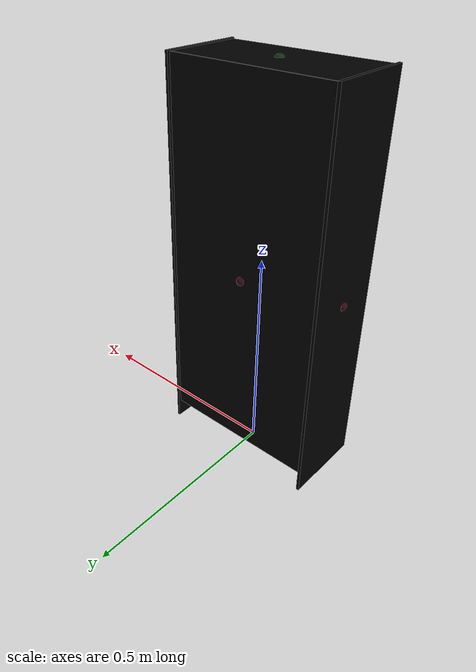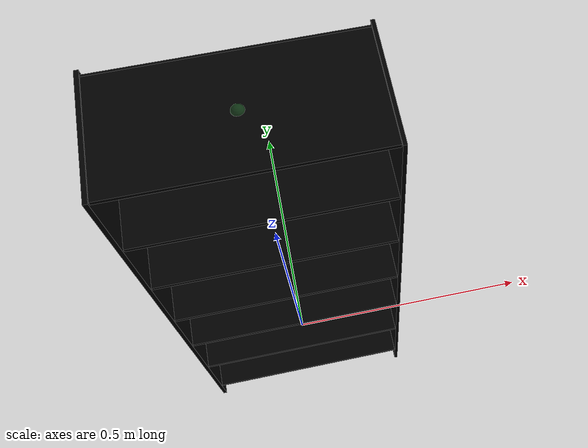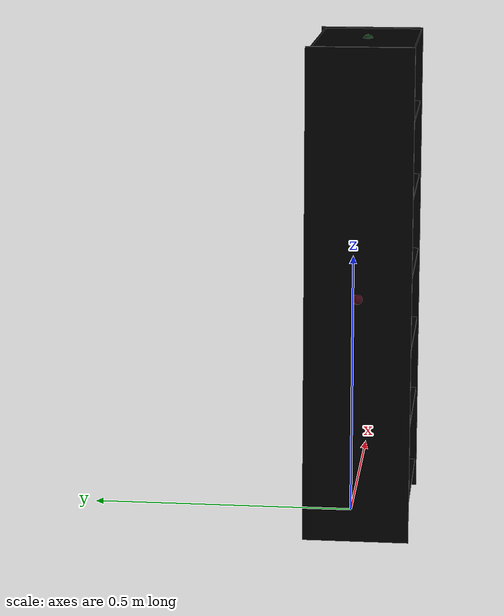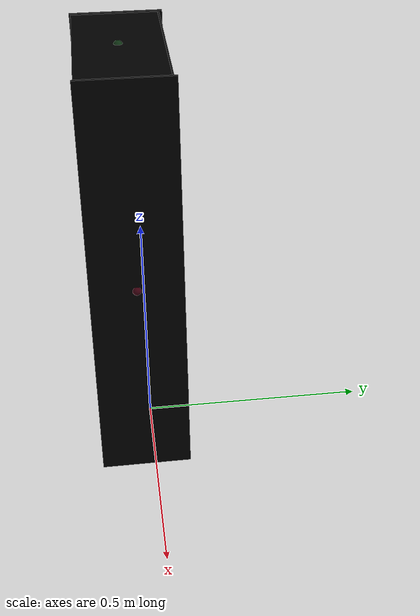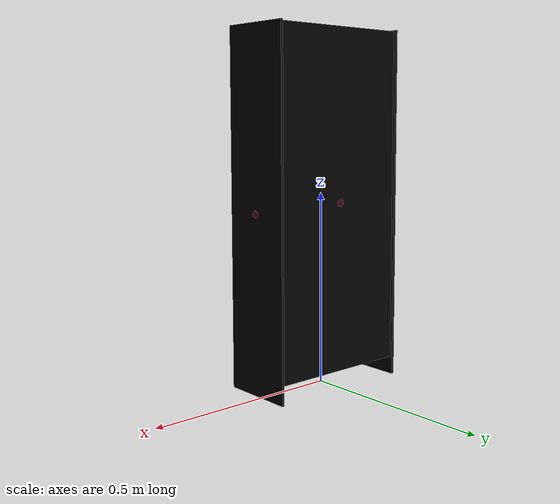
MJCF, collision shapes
<mujoco model="bookcase_billy_0191">
  <asset>
    <mesh file="bookcase_billy_0191/0.stl" name="part0" scale="0.0005 0.0005 0.0005" />
    <mesh file="bookcase_billy_0191/9.stl" name="part9" scale="0.0005 0.0005 0.0005" />
    <mesh file="bookcase_billy_0191/8.stl" name="part8" scale="0.0005 0.0005 0.0005" />
    <mesh file="bookcase_billy_0191/7.stl" name="part7" scale="0.0005 0.0005 0.0005" />
    <mesh file="bookcase_billy_0191/6.stl" name="part6" scale="0.0005 0.0005 0.0005" />
    <mesh file="bookcase_billy_0191/5.stl" name="part5" scale="0.0005 0.0005 0.0005" />
    <mesh file="bookcase_billy_0191/4.stl" name="part4" scale="0.0005 0.0005 0.0005" />
    <mesh file="bookcase_billy_0191/3.stl" name="part3" scale="0.0005 0.0005 0.0005" />
    <mesh file="bookcase_billy_0191/2.stl" name="part2" scale="0.0005 0.0005 0.0005" />
    <mesh file="bookcase_billy_0191/10.stl" name="part10" scale="0.0005 0.0005 0.0005" />
    <mesh file="bookcase_billy_0191/1.stl" name="part1" scale="0.0005 0.0005 0.0005" />
  </asset>
  <worldbody><body name="combined_body" pos="0 0.07 0.48020001220703127" quat="1 0 0 0"><geom conaffinity="0" contype="0" density="0" mesh="part0" name="0_part0_mesh" pos="-0.0 0.0 -0.0" rgba="0.82 0.71 0.55 1" type="mesh" quat="1 0 0 0" />
      <geom density="50" name="noviz_collision_0_part0_0" pos="-0.0 0.0 -0.0" quat="1 0 0 0" rgba="0 0 0 0" size="0.19209 0.00172 0.434975" solref="0.001 1" type="box" />
    <site name="0_part0_horizontal_radius_site" pos="-0.0 0.0 -0.0" quat="1 0 0 0" rgba="0 0 0 0" size="0.0005" />
      <site name="0_part0_top_site" pos="-0.0 0.0 -0.0" quat="1 0 0 0" rgba="0 0 0 0" size="0.0005" />
      <site name="0_part0_bottom_site" pos="-0.0 0.0 -0.0" quat="1 0 0 0" rgba="0 0 0 0" size="0.0005" />
      <site name="0_part0_corner_site8" pos="-0.0 0.0 -0.0" quat="1 0 0 0" rgba="0 0 0 0" size="0.01" />
      <site name="0_part0_corner_site7" pos="-0.0 0.0 -0.0" quat="1 0 0 0" rgba="0 0 0 0" size="0.01" />
      <site name="0_part0_corner_site6" pos="-0.0 0.0 -0.0" quat="1 0 0 0" rgba="0 0 0 0" size="0.01" />
      <site name="0_part0_corner_site5" pos="-0.0 0.0 -0.0" quat="1 0 0 0" rgba="0 0 0 0" size="0.01" />
      <site name="0_part0_corner_site4" pos="-0.0 0.0 -0.0" quat="1 0 0 0" rgba="0 0 0 0" size="0.01" />
      <site name="0_part0_corner_site3" pos="-0.0 0.0 -0.0" quat="1 0 0 0" rgba="0 0 0 0" size="0.01" />
      <site name="0_part0_corner_site2" pos="-0.0 0.0 -0.0" quat="1 0 0 0" rgba="0 0 0 0" size="0.01" />
      <site name="0_part0_corner_site1" pos="-0.0 0.0 -0.0" quat="1 0 0 0" rgba="0 0 0 0" size="0.01" />
      <site name="back-wall,0,180,conn_site1" pos="-0.0 0.0 -0.0" quat="1 0 0 0" rgba="0.9019 0.0980 0.2941 0.3" size="0.01" />
      <site name="back-wall,0,180,conn_site3" pos="-0.0 0.0 -0.0" quat="1 0 0 0" rgba="0.9019 0.0980 0.2941 0.3" size="0.01" />
      <geom conaffinity="0" contype="0" density="0" mesh="part9" name="10_part10_mesh" pos="1.5e-09 -0.09372957270000001 -0.2831041687" rgba="0.82 0.71 0.55 1" type="mesh" quat="1 0 0 0" />
      <geom density="50" name="noviz_collision_10_part10_0" pos="1.5e-09 -0.09372957270000001 -0.2831041687" quat="1 0 0 0" rgba="0 0 0 0" size="0.1905 0.09201 0.003175" solref="0.001 1" type="box" />
    <site name="10_part10_horizontal_radius_site" pos="1.5e-09 -0.09372957270000001 -0.2831041687" quat="1 0 0 0" rgba="0 0 0 0" size="0.0005" />
      <site name="10_part10_top_site" pos="1.5e-09 -0.09372957270000001 -0.2831041687" quat="1 0 0 0" rgba="0 0 0 0" size="0.0005" />
      <site name="10_part10_bottom_site" pos="1.5e-09 -0.09372957270000001 -0.2831041687" quat="1 0 0 0" rgba="0 0 0 0" size="0.0005" />
      <site name="10_part10_corner_site8" pos="1.5e-09 -0.09372957270000001 -0.2831041687" quat="1 0 0 0" rgba="0 0 0 0" size="0.01" />
      <site name="10_part10_corner_site7" pos="1.5e-09 -0.09372957270000001 -0.2831041687" quat="1 0 0 0" rgba="0 0 0 0" size="0.01" />
      <site name="10_part10_corner_site6" pos="1.5e-09 -0.09372957270000001 -0.2831041687" quat="1 0 0 0" rgba="0 0 0 0" size="0.01" />
      <site name="10_part10_corner_site5" pos="1.5e-09 -0.09372957270000001 -0.2831041687" quat="1 0 0 0" rgba="0 0 0 0" size="0.01" />
      <site name="10_part10_corner_site4" pos="1.5e-09 -0.09372957270000001 -0.2831041687" quat="1 0 0 0" rgba="0 0 0 0" size="0.01" />
      <site name="10_part10_corner_site3" pos="1.5e-09 -0.09372957270000001 -0.2831041687" quat="1 0 0 0" rgba="0 0 0 0" size="0.01" />
      <site name="10_part10_corner_site2" pos="1.5e-09 -0.09372957270000001 -0.2831041687" quat="1 0 0 0" rgba="0 0 0 0" size="0.01" />
      <site name="10_part10_corner_site1" pos="1.5e-09 -0.09372957270000001 -0.2831041687" quat="1 0 0 0" rgba="0 0 0 0" size="0.01" />
      <site name="flat-wall,0,180,conn_site10l" pos="1.5e-09 -0.09372957270000001 -0.2831041687" quat="1 0 0 0" rgba="0.2352 0.7058 0.2941 0.3" size="0.01" />
      <site name="flat-wall,0,180,conn_site10r" pos="1.5e-09 -0.09372957270000001 -0.2831041687" quat="1 0 0 0" rgba="0.2352 0.7058 0.2941 0.3" size="0.01" />
      <geom conaffinity="0" contype="0" density="0" mesh="part9" name="9_part9_mesh" pos="1.5e-09 -0.09372957270000001 -0.13917083435000002" rgba="0.82 0.71 0.55 1" type="mesh" quat="1 0 0 0" />
      <geom density="50" name="noviz_collision_9_part9_0" pos="1.5e-09 -0.09372957270000001 -0.13917083435000002" quat="1 0 0 0" rgba="0 0 0 0" size="0.1905 0.09201 0.003175" solref="0.001 1" type="box" />
    <site name="9_part9_horizontal_radius_site" pos="1.5e-09 -0.09372957270000001 -0.13917083435000002" quat="1 0 0 0" rgba="0 0 0 0" size="0.0005" />
      <site name="9_part9_top_site" pos="1.5e-09 -0.09372957270000001 -0.13917083435000002" quat="1 0 0 0" rgba="0 0 0 0" size="0.0005" />
      <site name="9_part9_bottom_site" pos="1.5e-09 -0.09372957270000001 -0.13917083435000002" quat="1 0 0 0" rgba="0 0 0 0" size="0.0005" />
      <site name="9_part9_corner_site8" pos="1.5e-09 -0.09372957270000001 -0.13917083435000002" quat="1 0 0 0" rgba="0 0 0 0" size="0.01" />
      <site name="9_part9_corner_site7" pos="1.5e-09 -0.09372957270000001 -0.13917083435000002" quat="1 0 0 0" rgba="0 0 0 0" size="0.01" />
      <site name="9_part9_corner_site6" pos="1.5e-09 -0.09372957270000001 -0.13917083435000002" quat="1 0 0 0" rgba="0 0 0 0" size="0.01" />
      <site name="9_part9_corner_site5" pos="1.5e-09 -0.09372957270000001 -0.13917083435000002" quat="1 0 0 0" rgba="0 0 0 0" size="0.01" />
      <site name="9_part9_corner_site4" pos="1.5e-09 -0.09372957270000001 -0.13917083435000002" quat="1 0 0 0" rgba="0 0 0 0" size="0.01" />
      <site name="9_part9_corner_site3" pos="1.5e-09 -0.09372957270000001 -0.13917083435000002" quat="1 0 0 0" rgba="0 0 0 0" size="0.01" />
      <site name="9_part9_corner_site2" pos="1.5e-09 -0.09372957270000001 -0.13917083435000002" quat="1 0 0 0" rgba="0 0 0 0" size="0.01" />
      <site name="9_part9_corner_site1" pos="1.5e-09 -0.09372957270000001 -0.13917083435000002" quat="1 0 0 0" rgba="0 0 0 0" size="0.01" />
      <site name="flat-wall,0,180,conn_site9l" pos="1.5e-09 -0.09372957270000001 -0.13917083435000002" quat="1 0 0 0" rgba="0.2352 0.7058 0.2941 0.3" size="0.01" />
      <site name="flat-wall,0,180,conn_site9r" pos="1.5e-09 -0.09372957270000001 -0.13917083435000002" quat="1 0 0 0" rgba="0.2352 0.7058 0.2941 0.3" size="0.01" />
      <geom conaffinity="0" contype="0" density="0" mesh="part8" name="8_part8_mesh" pos="1.5e-09 -0.09372957270000001 0.29262917685" rgba="0.82 0.71 0.55 1" type="mesh" quat="1 0 0 0" />
      <geom density="50" name="noviz_collision_8_part8_0" pos="1.5e-09 -0.09372957270000001 0.29262917685" quat="1 0 0 0" rgba="0 0 0 0" size="0.1905 0.09201 0.003175" solref="0.001 1" type="box" />
    <site name="8_part8_horizontal_radius_site" pos="1.5e-09 -0.09372957270000001 0.29262917685" quat="1 0 0 0" rgba="0 0 0 0" size="0.0005" />
      <site name="8_part8_top_site" pos="1.5e-09 -0.09372957270000001 0.29262917685" quat="1 0 0 0" rgba="0 0 0 0" size="0.0005" />
      <site name="8_part8_bottom_site" pos="1.5e-09 -0.09372957270000001 0.29262917685" quat="1 0 0 0" rgba="0 0 0 0" size="0.0005" />
      <site name="8_part8_corner_site8" pos="1.5e-09 -0.09372957270000001 0.29262917685" quat="1 0 0 0" rgba="0 0 0 0" size="0.01" />
      <site name="8_part8_corner_site7" pos="1.5e-09 -0.09372957270000001 0.29262917685" quat="1 0 0 0" rgba="0 0 0 0" size="0.01" />
      <site name="8_part8_corner_site6" pos="1.5e-09 -0.09372957270000001 0.29262917685" quat="1 0 0 0" rgba="0 0 0 0" size="0.01" />
      <site name="8_part8_corner_site5" pos="1.5e-09 -0.09372957270000001 0.29262917685" quat="1 0 0 0" rgba="0 0 0 0" size="0.01" />
      <site name="8_part8_corner_site4" pos="1.5e-09 -0.09372957270000001 0.29262917685" quat="1 0 0 0" rgba="0 0 0 0" size="0.01" />
      <site name="8_part8_corner_site3" pos="1.5e-09 -0.09372957270000001 0.29262917685" quat="1 0 0 0" rgba="0 0 0 0" size="0.01" />
      <site name="8_part8_corner_site2" pos="1.5e-09 -0.09372957270000001 0.29262917685" quat="1 0 0 0" rgba="0 0 0 0" size="0.01" />
      <site name="8_part8_corner_site1" pos="1.5e-09 -0.09372957270000001 0.29262917685" quat="1 0 0 0" rgba="0 0 0 0" size="0.01" />
      <site name="flat-wall,0,180,conn_site8l" pos="1.5e-09 -0.09372957270000001 0.29262917685" quat="1 0 0 0" rgba="0.2352 0.7058 0.2941 0.3" size="0.01" />
      <site name="flat-wall,0,180,conn_site8r" pos="1.5e-09 -0.09372957270000001 0.29262917685" quat="1 0 0 0" rgba="0.2352 0.7058 0.2941 0.3" size="0.01" />
      <geom conaffinity="0" contype="0" density="0" mesh="part7" name="7_part7_mesh" pos="1.5e-09 -0.09372957270000001 0.1486958191" rgba="0.82 0.71 0.55 1" type="mesh" quat="1 0 0 0" />
      <geom density="50" name="noviz_collision_7_part7_0" pos="1.5e-09 -0.09372957270000001 0.1486958191" quat="1 0 0 0" rgba="0 0 0 0" size="0.1905 0.09201 0.003175" solref="0.001 1" type="box" />
    <site name="7_part7_horizontal_radius_site" pos="1.5e-09 -0.09372957270000001 0.1486958191" quat="1 0 0 0" rgba="0 0 0 0" size="0.0005" />
      <site name="7_part7_top_site" pos="1.5e-09 -0.09372957270000001 0.1486958191" quat="1 0 0 0" rgba="0 0 0 0" size="0.0005" />
      <site name="7_part7_bottom_site" pos="1.5e-09 -0.09372957270000001 0.1486958191" quat="1 0 0 0" rgba="0 0 0 0" size="0.0005" />
      <site name="7_part7_corner_site8" pos="1.5e-09 -0.09372957270000001 0.1486958191" quat="1 0 0 0" rgba="0 0 0 0" size="0.01" />
      <site name="7_part7_corner_site7" pos="1.5e-09 -0.09372957270000001 0.1486958191" quat="1 0 0 0" rgba="0 0 0 0" size="0.01" />
      <site name="7_part7_corner_site6" pos="1.5e-09 -0.09372957270000001 0.1486958191" quat="1 0 0 0" rgba="0 0 0 0" size="0.01" />
      <site name="7_part7_corner_site5" pos="1.5e-09 -0.09372957270000001 0.1486958191" quat="1 0 0 0" rgba="0 0 0 0" size="0.01" />
      <site name="7_part7_corner_site4" pos="1.5e-09 -0.09372957270000001 0.1486958191" quat="1 0 0 0" rgba="0 0 0 0" size="0.01" />
      <site name="7_part7_corner_site3" pos="1.5e-09 -0.09372957270000001 0.1486958191" quat="1 0 0 0" rgba="0 0 0 0" size="0.01" />
      <site name="7_part7_corner_site2" pos="1.5e-09 -0.09372957270000001 0.1486958191" quat="1 0 0 0" rgba="0 0 0 0" size="0.01" />
      <site name="7_part7_corner_site1" pos="1.5e-09 -0.09372957270000001 0.1486958191" quat="1 0 0 0" rgba="0 0 0 0" size="0.01" />
      <site name="flat-wall,0,180,conn_site7l" pos="1.5e-09 -0.09372957270000001 0.1486958191" quat="1 0 0 0" rgba="0.2352 0.7058 0.2941 0.3" size="0.01" />
      <site name="flat-wall,0,180,conn_site7r" pos="1.5e-09 -0.09372957270000001 0.1486958191" quat="1 0 0 0" rgba="0.2352 0.7058 0.2941 0.3" size="0.01" />
      <geom conaffinity="0" contype="0" density="0" mesh="part6" name="6_part6_mesh" pos="1.5e-09 -0.09372957270000001 0.4318000061" rgba="0.82 0.71 0.55 1" type="mesh" quat="1 0 0 0" />
      <geom density="50" name="noviz_collision_6_part6_0" pos="1.5e-09 -0.09372957270000001 0.4318000061" quat="1 0 0 0" rgba="0 0 0 0" size="0.1905 0.09201 0.003175" solref="0.001 1" type="box" />
    <site name="6_part6_horizontal_radius_site" pos="1.5e-09 -0.09372957270000001 0.4318000061" quat="1 0 0 0" rgba="0 0 0 0" size="0.0005" />
      <site name="6_part6_top_site" pos="1.5e-09 -0.09372957270000001 0.4318000061" quat="1 0 0 0" rgba="0 0 0 0" size="0.0005" />
      <site name="6_part6_bottom_site" pos="1.5e-09 -0.09372957270000001 0.4318000061" quat="1 0 0 0" rgba="0 0 0 0" size="0.0005" />
      <site name="6_part6_corner_site8" pos="1.5e-09 -0.09372957270000001 0.4318000061" quat="1 0 0 0" rgba="0 0 0 0" size="0.01" />
      <site name="6_part6_corner_site7" pos="1.5e-09 -0.09372957270000001 0.4318000061" quat="1 0 0 0" rgba="0 0 0 0" size="0.01" />
      <site name="6_part6_corner_site6" pos="1.5e-09 -0.09372957270000001 0.4318000061" quat="1 0 0 0" rgba="0 0 0 0" size="0.01" />
      <site name="6_part6_corner_site5" pos="1.5e-09 -0.09372957270000001 0.4318000061" quat="1 0 0 0" rgba="0 0 0 0" size="0.01" />
      <site name="6_part6_corner_site4" pos="1.5e-09 -0.09372957270000001 0.4318000061" quat="1 0 0 0" rgba="0 0 0 0" size="0.01" />
      <site name="6_part6_corner_site3" pos="1.5e-09 -0.09372957270000001 0.4318000061" quat="1 0 0 0" rgba="0 0 0 0" size="0.01" />
      <site name="6_part6_corner_site2" pos="1.5e-09 -0.09372957270000001 0.4318000061" quat="1 0 0 0" rgba="0 0 0 0" size="0.01" />
      <site name="6_part6_corner_site1" pos="1.5e-09 -0.09372957270000001 0.4318000061" quat="1 0 0 0" rgba="0 0 0 0" size="0.01" />
      <site name="flat-wall,0,180,conn_site6l" pos="1.5e-09 -0.09372957270000001 0.4318000061" quat="1 0 0 0" rgba="0.2352 0.7058 0.2941 0.3" size="0.01" />
      <site name="flat-wall,0,180,conn_site6r" pos="1.5e-09 -0.09372957270000001 0.4318000061" quat="1 0 0 0" rgba="0.2352 0.7058 0.2941 0.3" size="0.01" />
      <geom conaffinity="0" contype="0" density="0" mesh="part4" name="5_part5_mesh" pos="1.5e-09 -0.09372957270000001 3.05e-09" rgba="0.82 0.71 0.55 1" type="mesh" quat="1 0 0 0" />
      <geom density="50" name="noviz_collision_5_part5_0" pos="1.5e-09 -0.09372957270000001 3.05e-09" quat="1 0 0 0" rgba="0 0 0 0" size="0.19129 0.092005 0.00315" solref="0.001 1" type="box" />
    <site name="5_part5_horizontal_radius_site" pos="1.5e-09 -0.09372957270000001 3.05e-09" quat="1 0 0 0" rgba="0 0 0 0" size="0.0005" />
      <site name="5_part5_top_site" pos="1.5e-09 -0.09372957270000001 3.05e-09" quat="1 0 0 0" rgba="0 0 0 0" size="0.0005" />
      <site name="5_part5_bottom_site" pos="1.5e-09 -0.09372957270000001 3.05e-09" quat="1 0 0 0" rgba="0 0 0 0" size="0.0005" />
      <site name="5_part5_corner_site8" pos="1.5e-09 -0.09372957270000001 3.05e-09" quat="1 0 0 0" rgba="0 0 0 0" size="0.01" />
      <site name="5_part5_corner_site7" pos="1.5e-09 -0.09372957270000001 3.05e-09" quat="1 0 0 0" rgba="0 0 0 0" size="0.01" />
      <site name="5_part5_corner_site6" pos="1.5e-09 -0.09372957270000001 3.05e-09" quat="1 0 0 0" rgba="0 0 0 0" size="0.01" />
      <site name="5_part5_corner_site5" pos="1.5e-09 -0.09372957270000001 3.05e-09" quat="1 0 0 0" rgba="0 0 0 0" size="0.01" />
      <site name="5_part5_corner_site4" pos="1.5e-09 -0.09372957270000001 3.05e-09" quat="1 0 0 0" rgba="0 0 0 0" size="0.01" />
      <site name="5_part5_corner_site3" pos="1.5e-09 -0.09372957270000001 3.05e-09" quat="1 0 0 0" rgba="0 0 0 0" size="0.01" />
      <site name="5_part5_corner_site2" pos="1.5e-09 -0.09372957270000001 3.05e-09" quat="1 0 0 0" rgba="0 0 0 0" size="0.01" />
      <site name="5_part5_corner_site1" pos="1.5e-09 -0.09372957270000001 3.05e-09" quat="1 0 0 0" rgba="0 0 0 0" size="0.01" />
      <site name="flat-wall,0,180,conn_site5l" pos="1.5e-09 -0.09372957270000001 3.05e-09" quat="1 0 0 0" rgba="0.2352 0.7058 0.2941 0.3" size="0.01" />
      <site name="flat-wall,0,180,conn_site5r" pos="1.5e-09 -0.09372957270000001 3.05e-09" quat="1 0 0 0" rgba="0.2352 0.7058 0.2941 0.3" size="0.01" />
      <geom conaffinity="0" contype="0" density="0" mesh="part3" name="4_part4_mesh" pos="1.5e-09 -0.09372957270000001 -0.4318" rgba="0.82 0.71 0.55 1" type="mesh" quat="1 0 0 0" />
      <geom density="50" name="noviz_collision_4_part4_0" pos="1.5e-09 -0.09372957270000001 -0.4318" quat="1 0 0 0" rgba="0 0 0 0" size="0.19129 0.092005 0.00315" solref="0.001 1" type="box" />
    <site name="4_part4_horizontal_radius_site" pos="1.5e-09 -0.09372957270000001 -0.4318" quat="1 0 0 0" rgba="0 0 0 0" size="0.0005" />
      <site name="4_part4_top_site" pos="1.5e-09 -0.09372957270000001 -0.4318" quat="1 0 0 0" rgba="0 0 0 0" size="0.0005" />
      <site name="4_part4_bottom_site" pos="1.5e-09 -0.09372957270000001 -0.4318" quat="1 0 0 0" rgba="0 0 0 0" size="0.0005" />
      <site name="4_part4_corner_site8" pos="1.5e-09 -0.09372957270000001 -0.4318" quat="1 0 0 0" rgba="0 0 0 0" size="0.01" />
      <site name="4_part4_corner_site7" pos="1.5e-09 -0.09372957270000001 -0.4318" quat="1 0 0 0" rgba="0 0 0 0" size="0.01" />
      <site name="4_part4_corner_site6" pos="1.5e-09 -0.09372957270000001 -0.4318" quat="1 0 0 0" rgba="0 0 0 0" size="0.01" />
      <site name="4_part4_corner_site5" pos="1.5e-09 -0.09372957270000001 -0.4318" quat="1 0 0 0" rgba="0 0 0 0" size="0.01" />
      <site name="4_part4_corner_site4" pos="1.5e-09 -0.09372957270000001 -0.4318" quat="1 0 0 0" rgba="0 0 0 0" size="0.01" />
      <site name="4_part4_corner_site3" pos="1.5e-09 -0.09372957270000001 -0.4318" quat="1 0 0 0" rgba="0 0 0 0" size="0.01" />
      <site name="4_part4_corner_site2" pos="1.5e-09 -0.09372957270000001 -0.4318" quat="1 0 0 0" rgba="0 0 0 0" size="0.01" />
      <site name="4_part4_corner_site1" pos="1.5e-09 -0.09372957270000001 -0.4318" quat="1 0 0 0" rgba="0 0 0 0" size="0.01" />
      <site name="flat-wall,0,180,conn_site4l" pos="1.5e-09 -0.09372957270000001 -0.4318" quat="1 0 0 0" rgba="0.2352 0.7058 0.2941 0.3" size="0.01" />
      <site name="flat-wall,0,180,conn_site4r" pos="1.5e-09 -0.09372957270000001 -0.4318" quat="1 0 0 0" rgba="0.2352 0.7058 0.2941 0.3" size="0.01" />
      <geom conaffinity="0" contype="0" density="0" mesh="part2" name="3_part3_mesh" pos="-0.193675 -0.0904875086 -0.022224987800000002" rgba="0.82 0.71 0.55 1" type="mesh" quat="1 0 0 0" />
      <geom density="50" name="noviz_collision_3_part3_0" pos="-0.193675 -0.0904875086 -0.022224987800000002" quat="1 0 0 0" rgba="0 0 0 0" size="0.00339 0.0986 0.45972" solref="0.001 1" type="box" />
    <site name="3_part3_horizontal_radius_site" pos="-0.193675 -0.0904875086 -0.022224987800000002" quat="1 0 0 0" rgba="0 0 0 0" size="0.0005" />
      <site name="3_part3_top_site" pos="-0.193675 -0.0904875086 -0.022224987800000002" quat="1 0 0 0" rgba="0 0 0 0" size="0.0005" />
      <site name="3_part3_bottom_site" pos="-0.193675 -0.0904875086 -0.022224987800000002" quat="1 0 0 0" rgba="0 0 0 0" size="0.0005" />
      <site name="3_part3_corner_site8" pos="-0.193675 -0.0904875086 -0.022224987800000002" quat="1 0 0 0" rgba="0 0 0 0" size="0.01" />
      <site name="3_part3_corner_site7" pos="-0.193675 -0.0904875086 -0.022224987800000002" quat="1 0 0 0" rgba="0 0 0 0" size="0.01" />
      <site name="3_part3_corner_site6" pos="-0.193675 -0.0904875086 -0.022224987800000002" quat="1 0 0 0" rgba="0 0 0 0" size="0.01" />
      <site name="3_part3_corner_site5" pos="-0.193675 -0.0904875086 -0.022224987800000002" quat="1 0 0 0" rgba="0 0 0 0" size="0.01" />
      <site name="3_part3_corner_site4" pos="-0.193675 -0.0904875086 -0.022224987800000002" quat="1 0 0 0" rgba="0 0 0 0" size="0.01" />
      <site name="3_part3_corner_site3" pos="-0.193675 -0.0904875086 -0.022224987800000002" quat="1 0 0 0" rgba="0 0 0 0" size="0.01" />
      <site name="3_part3_corner_site2" pos="-0.193675 -0.0904875086 -0.022224987800000002" quat="1 0 0 0" rgba="0 0 0 0" size="0.01" />
      <site name="3_part3_corner_site1" pos="-0.193675 -0.0904875086 -0.022224987800000002" quat="1 0 0 0" rgba="0 0 0 0" size="0.01" />
      <site name="wall-back,0,180,conn_site3" pos="-0.193675 -0.0904875086 -0.022224987800000002" quat="1 0 0 0" rgba="0.9019 0.0980 0.2941 0.3" size="0.01" />
      <site name="wall-flat,0,180,conn_site4l" pos="-0.193675 -0.0904875086 -0.022224987800000002" quat="1 0 0 0" rgba="0.2352 0.7058 0.2941 0.3" size="0.01" />
      <site name="wall-flat,0,180,conn_site5l" pos="-0.193675 -0.0904875086 -0.022224987800000002" quat="1 0 0 0" rgba="0.2352 0.7058 0.2941 0.3" size="0.01" />
      <site name="wall-flat,0,180,conn_site6l" pos="-0.193675 -0.0904875086 -0.022224987800000002" quat="1 0 0 0" rgba="0.2352 0.7058 0.2941 0.3" size="0.01" />
      <site name="wall-flat,0,180,conn_site7l" pos="-0.193675 -0.0904875086 -0.022224987800000002" quat="1 0 0 0" rgba="0.2352 0.7058 0.2941 0.3" size="0.01" />
      <site name="wall-flat,0,180,conn_site8l" pos="-0.193675 -0.0904875086 -0.022224987800000002" quat="1 0 0 0" rgba="0.2352 0.7058 0.2941 0.3" size="0.01" />
      <site name="wall-flat,0,180,conn_site9l" pos="-0.193675 -0.0904875086 -0.022224987800000002" quat="1 0 0 0" rgba="0.2352 0.7058 0.2941 0.3" size="0.01" />
      <site name="wall-flat,0,180,conn_site10l" pos="-0.193675 -0.0904875086 -0.022224987800000002" quat="1 0 0 0" rgba="0.2352 0.7058 0.2941 0.3" size="0.01" />
      <site name="wall-front,0,180,conn_sitel" pos="-0.193675 -0.0904875086 -0.022224987800000002" quat="1 0 0 0" rgba="1.0 0.8823 0.0980 0.3" size="0.01" />
      <geom conaffinity="0" contype="0" density="0" mesh="part10" name="2_part2_mesh" pos="1.5e-09 -0.16069047585000001 -0.4571999996" rgba="0.82 0.71 0.55 1" type="mesh" quat="1 0 0 0" />
      <geom density="50" name="noviz_collision_2_part2_0" pos="1.5e-09 -0.16069047585000001 -0.4571999996" quat="1 0 0 0" rgba="0 0 0 0" size="0.19 0.003175 0.02219" solref="0.001 1" type="box" />
    <site name="2_part2_horizontal_radius_site" pos="1.5e-09 -0.16069047585000001 -0.4571999996" quat="1 0 0 0" rgba="0 0 0 0" size="0.0005" />
      <site name="2_part2_top_site" pos="1.5e-09 -0.16069047585000001 -0.4571999996" quat="1 0 0 0" rgba="0 0 0 0" size="0.0005" />
      <site name="2_part2_bottom_site" pos="1.5e-09 -0.16069047585000001 -0.4571999996" quat="1 0 0 0" rgba="0 0 0 0" size="0.0005" />
      <site name="2_part2_corner_site8" pos="1.5e-09 -0.16069047585000001 -0.4571999996" quat="1 0 0 0" rgba="0 0 0 0" size="0.01" />
      <site name="2_part2_corner_site7" pos="1.5e-09 -0.16069047585000001 -0.4571999996" quat="1 0 0 0" rgba="0 0 0 0" size="0.01" />
      <site name="2_part2_corner_site6" pos="1.5e-09 -0.16069047585000001 -0.4571999996" quat="1 0 0 0" rgba="0 0 0 0" size="0.01" />
      <site name="2_part2_corner_site5" pos="1.5e-09 -0.16069047585000001 -0.4571999996" quat="1 0 0 0" rgba="0 0 0 0" size="0.01" />
      <site name="2_part2_corner_site4" pos="1.5e-09 -0.16069047585000001 -0.4571999996" quat="1 0 0 0" rgba="0 0 0 0" size="0.01" />
      <site name="2_part2_corner_site3" pos="1.5e-09 -0.16069047585000001 -0.4571999996" quat="1 0 0 0" rgba="0 0 0 0" size="0.01" />
      <site name="2_part2_corner_site2" pos="1.5e-09 -0.16069047585000001 -0.4571999996" quat="1 0 0 0" rgba="0 0 0 0" size="0.01" />
      <site name="2_part2_corner_site1" pos="1.5e-09 -0.16069047585000001 -0.4571999996" quat="1 0 0 0" rgba="0 0 0 0" size="0.01" />
      <site name="front-wall,0,180,conn_siter" pos="1.5e-09 -0.16069047585000001 -0.4571999996" quat="1 0 0 0" rgba="1.0 0.8823 0.0980 0.3" size="0.01" />
      <site name="front-wall,0,180,conn_sitel" pos="1.5e-09 -0.16069047585000001 -0.4571999996" quat="1 0 0 0" rgba="1.0 0.8823 0.0980 0.3" size="0.01" />
      <geom conaffinity="0" contype="0" density="0" mesh="part1" name="1_part1_mesh" pos="0.19367500615 -0.0904875086 -0.022224987800000002" rgba="0.82 0.71 0.55 1" type="mesh" quat="1 0 0 0" />
      <geom density="50" name="noviz_collision_1_part1_0" pos="0.19367500615 -0.0904875086 -0.022224987800000002" quat="1 0 0 0" rgba="0 0 0 0" size="0.00296 0.0986 0.45972" solref="0.001 1" type="box" />
    <site name="1_part1_horizontal_radius_site" pos="0.19367500615 -0.0904875086 -0.022224987800000002" quat="1 0 0 0" rgba="0 0 0 0" size="0.0005" />
      <site name="1_part1_top_site" pos="0.19367500615 -0.0904875086 -0.022224987800000002" quat="1 0 0 0" rgba="0 0 0 0" size="0.0005" />
      <site name="1_part1_bottom_site" pos="0.19367500615 -0.0904875086 -0.022224987800000002" quat="1 0 0 0" rgba="0 0 0 0" size="0.0005" />
      <site name="1_part1_corner_site8" pos="0.19367500615 -0.0904875086 -0.022224987800000002" quat="1 0 0 0" rgba="0 0 0 0" size="0.01" />
      <site name="1_part1_corner_site7" pos="0.19367500615 -0.0904875086 -0.022224987800000002" quat="1 0 0 0" rgba="0 0 0 0" size="0.01" />
      <site name="1_part1_corner_site6" pos="0.19367500615 -0.0904875086 -0.022224987800000002" quat="1 0 0 0" rgba="0 0 0 0" size="0.01" />
      <site name="1_part1_corner_site5" pos="0.19367500615 -0.0904875086 -0.022224987800000002" quat="1 0 0 0" rgba="0 0 0 0" size="0.01" />
      <site name="1_part1_corner_site4" pos="0.19367500615 -0.0904875086 -0.022224987800000002" quat="1 0 0 0" rgba="0 0 0 0" size="0.01" />
      <site name="1_part1_corner_site3" pos="0.19367500615 -0.0904875086 -0.022224987800000002" quat="1 0 0 0" rgba="0 0 0 0" size="0.01" />
      <site name="1_part1_corner_site2" pos="0.19367500615 -0.0904875086 -0.022224987800000002" quat="1 0 0 0" rgba="0 0 0 0" size="0.01" />
      <site name="1_part1_corner_site1" pos="0.19367500615 -0.0904875086 -0.022224987800000002" quat="1 0 0 0" rgba="0 0 0 0" size="0.01" />
      <site name="wall-back,0,180,conn_site1" pos="0.19367500615 -0.0904875086 -0.022224987800000002" quat="1 0 0 0" rgba="0.9019 0.0980 0.2941 0.3" size="0.01" />
      <site name="wall-flat,0,180,conn_site4r" pos="0.19367500615 -0.0904875086 -0.022224987800000002" quat="1 0 0 0" rgba="0.2352 0.7058 0.2941 0.3" size="0.01" />
      <site name="wall-flat,0,180,conn_site5r" pos="0.19367500615 -0.0904875086 -0.022224987800000002" quat="1 0 0 0" rgba="0.2352 0.7058 0.2941 0.3" size="0.01" />
      <site name="wall-flat,0,180,conn_site6r" pos="0.19367500615 -0.0904875086 -0.022224987800000002" quat="1 0 0 0" rgba="0.2352 0.7058 0.2941 0.3" size="0.01" />
      <site name="wall-flat,0,180,conn_site7r" pos="0.19367500615 -0.0904875086 -0.022224987800000002" quat="1 0 0 0" rgba="0.2352 0.7058 0.2941 0.3" size="0.01" />
      <site name="wall-flat,0,180,conn_site8r" pos="0.19367500615 -0.0904875086 -0.022224987800000002" quat="1 0 0 0" rgba="0.2352 0.7058 0.2941 0.3" size="0.01" />
      <site name="wall-flat,0,180,conn_site9r" pos="0.19367500615 -0.0904875086 -0.022224987800000002" quat="1 0 0 0" rgba="0.2352 0.7058 0.2941 0.3" size="0.01" />
      <site name="wall-flat,0,180,conn_site10r" pos="0.19367500615 -0.0904875086 -0.022224987800000002" quat="1 0 0 0" rgba="0.2352 0.7058 0.2941 0.3" size="0.01" />
      <site name="wall-front,0,180,conn_siter" pos="0.19367500615 -0.0904875086 -0.022224987800000002" quat="1 0 0 0" rgba="1.0 0.8823 0.0980 0.3" size="0.01" />
      </body></worldbody><actuator /><sensor /><contact /><default /></mujoco>
